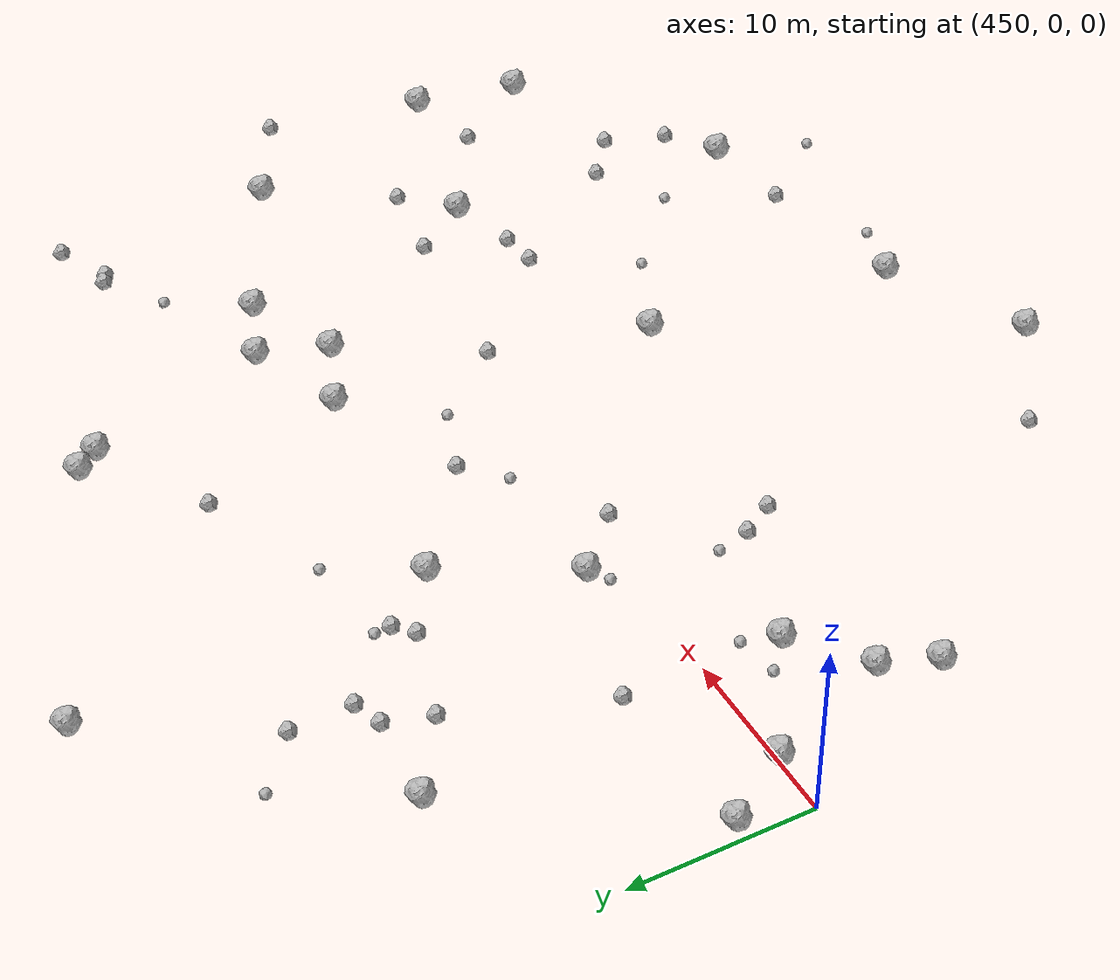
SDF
<sdf version="1.6">
 <world name="default">
  <include><uri>model://sun</uri></include>
  <model name="rock1_12_4">
   <include><uri>model://rock1</uri><pose>459.1785448983444 15.44094094286747 0.5 0 0 0</pose></include>
  </model>
  <model name="rock1_12_5">
   <include><uri>model://rock1</uri><pose>455.03151187663735 -10.149410179396185 0.5 0 0 0</pose></include>
  </model>
  <model name="rock1_12_6">
   <include><uri>model://rock1</uri><pose>453.5542903650178 -0.16696263776437092 0.5 0 0 0</pose></include>
  </model>
  <model name="rock1_12_7">
   <include><uri>model://rock1</uri><pose>503.6860229230018 2.6287127136495982 0.5 0 0 0</pose></include>
  </model>
  <model name="rock1_12_8">
   <include><uri>model://rock1</uri><pose>490.99233665036854 8.901661069862406 0.5 0 0 0</pose></include>
  </model>
  <model name="rock1_12_9">
   <include><uri>model://rock1</uri><pose>456.2107286530124 -7.224757599618275 0.5 0 0 0</pose></include>
  </model>
  <model name="rock1_12_10">
   <include><uri>model://rock1</uri><pose>497.01423210410337 -6.249782915526328 0.5 0 0 0</pose></include>
  </model>
  <model name="rock1_12_11">
   <include><uri>model://rock1</uri><pose>488.0264660395639 19.222114227962727 0.5 0 0 0</pose></include>
  </model>
  <model name="rock1_12_12">
   <include><uri>model://rock1</uri><pose>468.3557053808547 1.6584727509387527 0.5 0 0 0</pose></include>
  </model>
  <model name="rock1_12_13">
   <include><uri>model://rock1</uri><pose>505.8309425346908 -14.56598097581871 0.5 0 0 0</pose></include>
  </model>
  <model name="rock1_12_14">
   <include><uri>model://rock1</uri><pose>481.00066595868844 -24.152609188598802 0.5 0 0 0</pose></include>
  </model>
  <model name="rock1_12_15">
   <include><uri>model://rock1</uri><pose>451.12129806700835 3.636509703512253 0.5 0 0 0</pose></include>
  </model>
  <model name="rock1_12_16">
   <include><uri>model://rock1</uri><pose>485.64765950079527 6.923259522376917 0.5 0 0 0</pose></include>
  </model>
  <model name="rock1_12_17">
   <include><uri>model://rock1</uri><pose>489.61494967717 5.194017792570712 0.5 0 0 0</pose></include>
  </model>
  <model name="rock1_12_18">
   <include><uri>model://rock1</uri><pose>459.9261755388484 -4.264886028573613 0.5 0 0 0</pose></include>
  </model>
  <model name="rock1_12_19">
   <include><uri>model://rock1</uri><pose>471.03213896248604 27.814941466208637 0.5 0 0 0</pose></include>
  </model>
  <model name="rock1_12_20">
   <include><uri>model://rock1</uri><pose>482.97258043078847 -10.472022735256928 0.5 0 0 0</pose></include>
  </model>
  <model name="rock1_12_21">
   <include><uri>model://rock1</uri><pose>487.078782805669 20.565661328959436 0.5 0 0 0</pose></include>
  </model>
  <model name="rock1_12_22">
   <include><uri>model://rock1</uri><pose>494.65981819370955 7.362198395552312 0.5 0 0 0</pose></include>
  </model>
  <model name="rock1_12_23">
   <include><uri>model://rock1</uri><pose>473.3650027545741 -27.983029641356378 0.5 0 0 0</pose></include>
  </model>
  <model name="rock1_12_24">
   <include><uri>model://rock1</uri><pose>506.97870363583013 -8.888238835221355 0.5 0 0 0</pose></include>
  </model>
  <model name="rock1_12_25">
   <include><uri>model://rock1</uri><pose>494.7174818343729 -21.715700736759842 0.5 0 0 0</pose></include>
  </model>
  <model name="rock1_12_26">
   <include><uri>model://rock1</uri><pose>472.1389322434485 8.514762752332857 0.5 0 0 0</pose></include>
  </model>
  <model name="rock2_12_0">
   <include><uri>model://rock2</uri><pose>466.948236422252 -23.70156021260621 0.3 0 0 0</pose></include>
  </model>
  <model name="rock2_12_1">
   <include><uri>model://rock2</uri><pose>478.0043716642074 3.7250263575879217 0.3 0 0 0</pose></include>
  </model>
  <model name="rock2_12_2">
   <include><uri>model://rock2</uri><pose>465.67582916806595 15.586269781690469 0.3 0 0 0</pose></include>
  </model>
  <model name="rock2_12_3">
   <include><uri>model://rock2</uri><pose>499.36444774640825 -3.750345697603482 0.3 0 0 0</pose></include>
  </model>
  <model name="rock2_12_4">
   <include><uri>model://rock2</uri><pose>471.23146275750554 -1.2665181852565368 0.3 0 0 0</pose></include>
  </model>
  <model name="rock2_12_5">
   <include><uri>model://rock2</uri><pose>508.69871672241976 -0.2992535668376277 0.3 0 0 0</pose></include>
  </model>
  <model name="rock2_12_6">
   <include><uri>model://rock2</uri><pose>466.85006105622796 -6.658927498580258 0.3 0 0 0</pose></include>
  </model>
  <model name="rock2_12_7">
   <include><uri>model://rock2</uri><pose>490.99007947603826 -7.564085894390075 0.3 0 0 0</pose></include>
  </model>
  <model name="rock2_12_8">
   <include><uri>model://rock2</uri><pose>503.7312984634751 14.606326241060174 0.3 0 0 0</pose></include>
  </model>
  <model name="rock2_12_9">
   <include><uri>model://rock2</uri><pose>497.2050556247586 -19.787133380015298 0.3 0 0 0</pose></include>
  </model>
  <model name="rock2_12_10">
   <include><uri>model://rock2</uri><pose>460.0646832041105 4.343544220400524 0.3 0 0 0</pose></include>
  </model>
  <model name="rock2_12_11">
   <include><uri>model://rock2</uri><pose>469.42207595482125 11.766695645261649 0.3 0 0 0</pose></include>
  </model>
  <model name="rock2_12_12">
   <include><uri>model://rock2</uri><pose>481.4708057394063 15.862797208256183 0.3 0 0 0</pose></include>
  </model>
  <model name="rock2_12_13">
   <include><uri>model://rock2</uri><pose>464.03299308356225 15.042929056602318 0.3 0 0 0</pose></include>
  </model>
  <model name="rock2_12_14">
   <include><uri>model://rock2</uri><pose>502.4757807874552 -9.829045229951667 0.3 0 0 0</pose></include>
  </model>
  <model name="rock2_12_15">
   <include><uri>model://rock2</uri><pose>467.9453149024814 -8.521163918210686 0.3 0 0 0</pose></include>
  </model>
  <model name="rock2_12_16">
   <include><uri>model://rock2</uri><pose>489.36465871518936 -22.376257356418016 0.3 0 0 0</pose></include>
  </model>
  <model name="rock2_12_17">
   <include><uri>model://rock2</uri><pose>494.68751849344875 -3.020474707085608 0.3 0 0 0</pose></include>
  </model>
  <model name="rock2_12_18">
   <include><uri>model://rock2</uri><pose>485.14974249883 -1.876785839128111 0.3 0 0 0</pose></include>
  </model>
  <model name="rock2_12_19">
   <include><uri>model://rock2</uri><pose>495.9783064243654 -14.586446467077334 0.3 0 0 0</pose></include>
  </model>
  <model name="rock2_12_20">
   <include><uri>model://rock2</uri><pose>500.28385957038637 13.579660206592528 0.3 0 0 0</pose></include>
  </model>
  <model name="rock2_12_21">
   <include><uri>model://rock2</uri><pose>468.4337174106158 10.883909764444084 0.3 0 0 0</pose></include>
  </model>
  <model name="rock2_12_22">
   <include><uri>model://rock2</uri><pose>500.83911422501757 13.265946190602293 0.3 0 0 0</pose></include>
  </model>
  <model name="rock2_12_23">
   <include><uri>model://rock2</uri><pose>498.42244890195775 -16.523217132809606 0.3 0 0 0</pose></include>
  </model>
  <model name="rock2_12_24">
   <include><uri>model://rock2</uri><pose>463.2140748951456 12.546178822404165 0.3 0 0 0</pose></include>
  </model>
  <model name="rock2_12_25">
   <include><uri>model://rock2</uri><pose>465.5955118231694 19.025477820442404 0.3 0 0 0</pose></include>
  </model>
  <model name="rock2_12_26">
   <include><uri>model://rock2</uri><pose>493.06482651758773 -7.328056664681853 0.3 0 0 0</pose></include>
  </model>
  <model name="rock3_12_0">
   <include><uri>model://rock3</uri><pose>481.7589664349418 2.232871730404959 0.2 0 0 0</pose></include>
  </model>
  <model name="rock3_12_1">
   <include><uri>model://rock3</uri><pose>467.19614643913417 0.8914863055649462 0.2 0 0 0</pose></include>
  </model>
  <model name="rock3_12_2">
   <include><uri>model://rock3</uri><pose>487.7573553760463 -12.82601268196603 0.2 0 0 0</pose></include>
  </model>
  <model name="rock3_12_3">
   <include><uri>model://rock3</uri><pose>460.52395047873677 -2.4184611519388035 0.2 0 0 0</pose></include>
  </model>
  <model name="rock3_12_4">
   <include><uri>model://rock3</uri><pose>484.12084643572035 -25.081948428646037 0.2 0 0 0</pose></include>
  </model>
  <model name="rock3_12_5">
   <include><uri>model://rock3</uri><pose>466.3803905641508 -4.818448513050608 0.2 0 0 0</pose></include>
  </model>
  <model name="rock3_12_6">
   <include><uri>model://rock3</uri><pose>469.4205295284002 12.603976148406169 0.2 0 0 0</pose></include>
  </model>
  <model name="rock3_12_7">
   <include><uri>model://rock3</uri><pose>458.12815745319074 -2.7961892361169483 0.2 0 0 0</pose></include>
  </model>
  <model name="rock3_12_8">
   <include><uri>model://rock3</uri><pose>475.9560065115371 1.69602514962191 0.2 0 0 0</pose></include>
  </model>
  <model name="rock3_12_9">
   <include><uri>model://rock3</uri><pose>474.6448901030916 12.997263024852131 0.2 0 0 0</pose></include>
  </model>
  <model name="rock3_12_10">
   <include><uri>model://rock3</uri><pose>492.7030341346824 -26.601978156400527 0.2 0 0 0</pose></include>
  </model>
  <model name="rock3_12_11">
   <include><uri>model://rock3</uri><pose>497.20073141262895 11.344371083869362 0.2 0 0 0</pose></include>
  </model>
  <model name="rock3_12_12">
   <include><uri>model://rock3</uri><pose>462.64295618107076 21.510628398732763 0.2 0 0 0</pose></include>
  </model>
  <model name="rock3_12_13">
   <include><uri>model://rock3</uri><pose>492.2059519313928 -16.894748515394916 0.2 0 0 0</pose></include>
  </model>
 </world>
</sdf>
